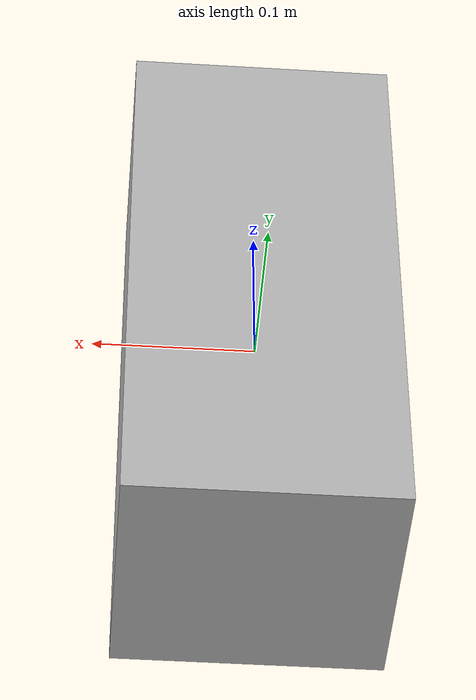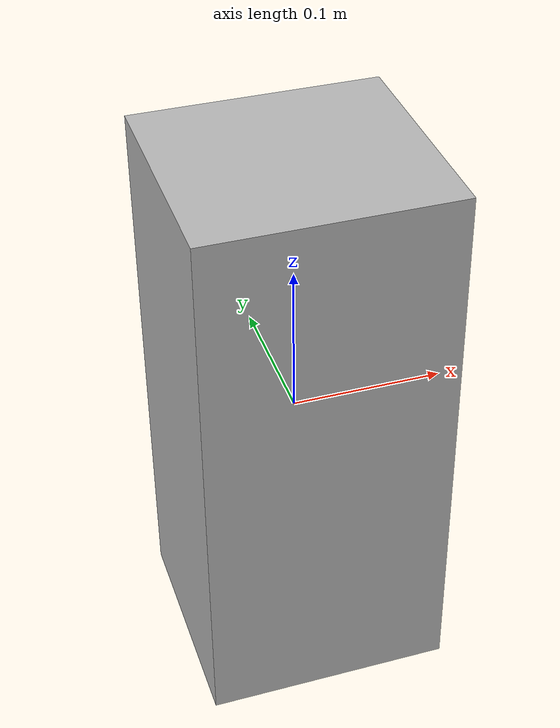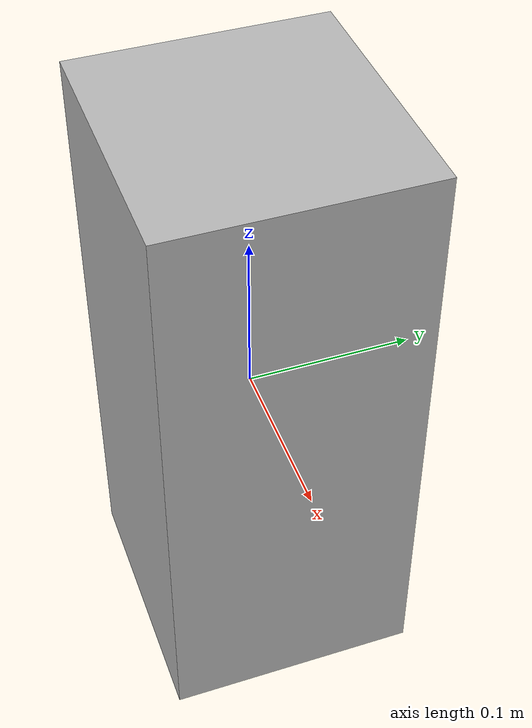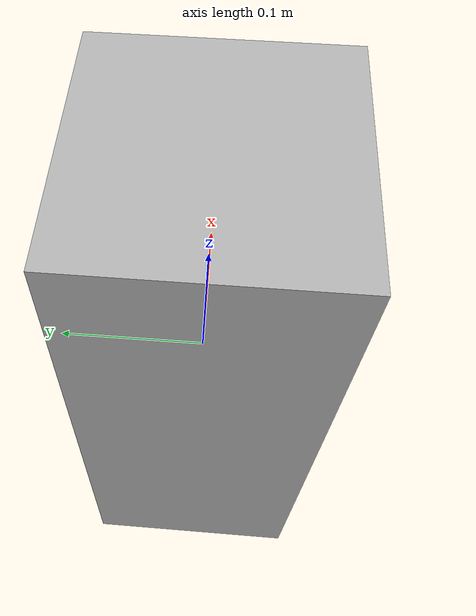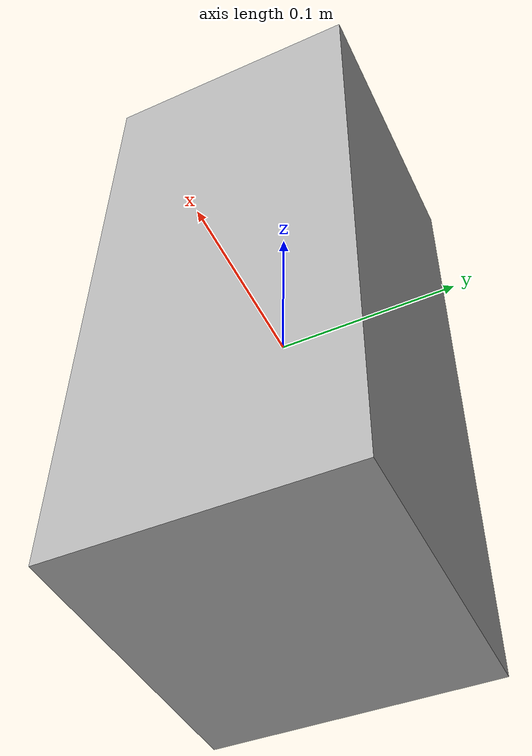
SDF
<?xml version="1.0" ?>
<sdf version="1.5">
  <model name="Tag0">
    <static>true</static>
    <link name="link">
      <pose>0 0 0 0 0 0</pose>
      <collision name="collision">
        <geometry>
          <box>
            <size>.1615 0.152 .3642</size>
          </box>
        </geometry>
      </collision>
      <visual name="visual">
        <cast_shadows>false</cast_shadows>
        <geometry>
          <box>
            <size>.1615 0.152 .3642</size>
          </box>
        </geometry>
        <material>
          <script>
            <uri>model://Tag0/materials/scripts</uri>
            <uri>model://Tag0/materials/textures</uri>
            <name>vrc/Tag0</name>
          </script>
        </material>
      </visual>
    </link>
  </model>
</sdf>
